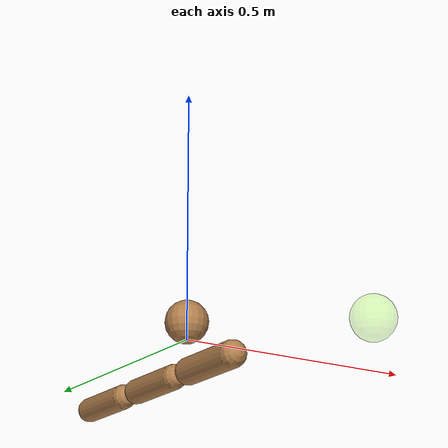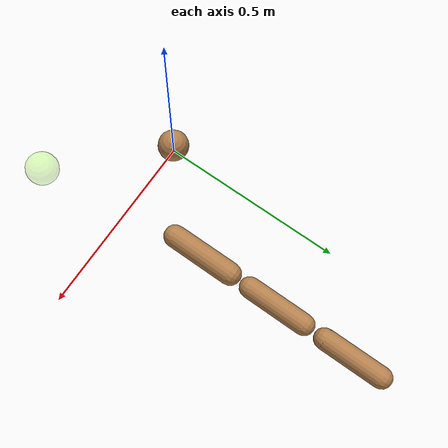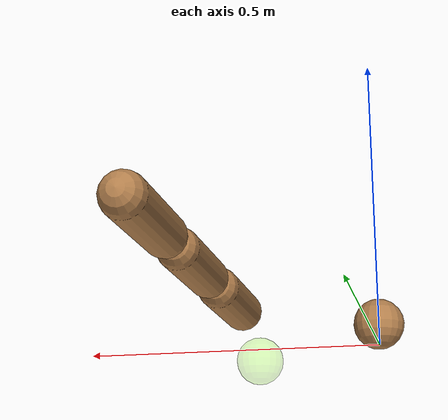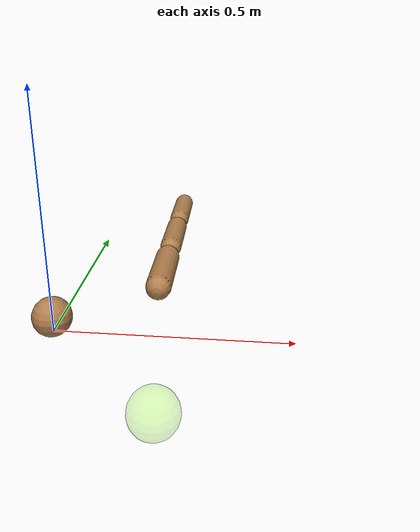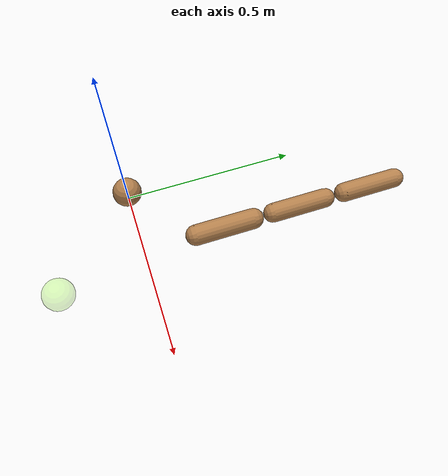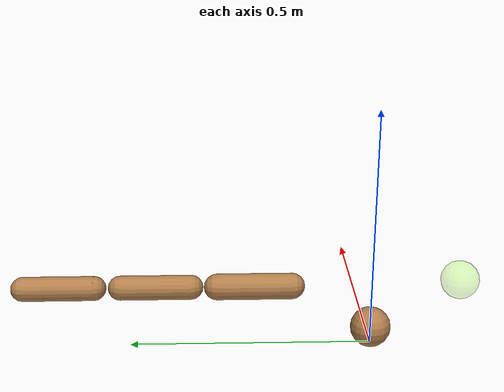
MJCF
<mujoco model="planar point mass">
    <visual>
        <quality shadowsize="2048" />
        <headlight ambient="0.4 0.4 0.4" diffuse="0.8 0.8 0.8" specular="0.1 0.1 0.1" />
    </visual>

  <!--  Time step is very important any number above 0.008 leads to unstable results original time step is 0.0001 -->
  <option impratio="10" iterations="1" ls_iterations="4" timestep="0.006">
    <flag eulerdamp="disable"/>
  </option>

    <asset>
        <texture type="skybox" name="skybox" builtin="gradient" mark="random" rgb1="0.4 0.6 0.8" rgb2="0 0 0" markrgb="1 1 1" width="800" height="4800" />
        <texture type="2d" name="grid" builtin="checker" mark="edge" rgb1="0.1 0.2 0.3" rgb2="0.2 0.3 0.4" markrgb="0.2 0.3 0.4" width="300" height="300" />
        <material name="grid" texture="grid" texuniform="true" reflectance="0.2" />
        <material name="self" rgba="0.7 0.5 0.3 1" />
        <material name="self_default" rgba="0.7 0.5 0.3 1" />
        <material name="self_highlight" rgba="0 0.5 0.3 1" />
        <material name="effector" rgba="0.7 0.4 0.2 1" />
        <material name="effector_default" rgba="0.7 0.4 0.2 1" />
        <material name="effector_highlight" rgba="0 0.5 0.3 1" />
        <material name="decoration" rgba="0.3 0.5 0.7 1" />
        <material name="eye" rgba="0 0.2 1 1" />
        <material name="target" rgba="0.6 0.3 0.3 1" />
        <material name="target_default" rgba="0.6 0.3 0.3 1" />
        <material name="target_highlight" rgba="0.6 0.3 0.3 0.4" />
    </asset>

    <option timestep="0.01"> </option>

    <worldbody>
        <camera name="fixed" pos="0 0 0.75" />
        <light name="light" pos="0 0 1" dir="0 0 -1" />

        <body name ="finger" pos="0.2 0.15 0.035" quat="0.707107 0.707107 0 0">
            <joint name="proximal" range="-150 -80" axis="0 -1 0" ref="-90" damping="0.05" limited="false" />
            <geom name="proximal" type="capsule" material="self" size=".03" fromto="0 0 0 0 0 -.17" contype="1" conaffinity="2"/>
            <body name="distal" pos="0 0 -.23">
                <joint name="distal" range="-50 50" axis="0 -1 0" damping="0.05" limited="false"/>
                <geom name="distal" type="capsule" size=".028" material="self" fromto="0 0 0 0 0 -.16" contype="1" conaffinity="2"/>
                <body name="distal2" pos="0 0 -.22">
                    <joint name="distal2" range="-50 50" axis="0 -1 0" damping="0.05" limited="false"/>
                    <geom name="distal2" type="capsule" size=".028" material="self" fromto="0 0 0 0 0 -.16" contype="1" conaffinity="2"/>
                </body>
            </body>
        </body>

        <body name="object" pos="0.0 0.0 0.035">
            <camera name="cam0" pos="0 -0.3 0.3" xyaxes="1 0 0 0 0.7 0.7"/>
            <joint name="root_x" type="slide"  pos="0 0 0" axis="1 0 0" damping="3" frictionloss=".01"/>
            <joint name="root_y" type="slide"  pos="0 0 0" axis="0 1 0" damping="3" frictionloss=".01"/>
            <geom name="pointmass" type="sphere" size=".042" material="self" mass=".6" condim="3"  group="2" solimp="0.9 0.95 0.001" solref="0.02 1"/>
        </body>

        <geom name="target" pos="0.25 -0.25 0.022" material="target" type="sphere" rgba="0.5 1 0 0.25"  size=".045" contype="0" conaffinity="0"/>
    </worldbody>

    <actuator>
        <general name="proximal" joint="proximal" gear="1 0 0 0 0 0" />
        <general name="distal" joint="distal" gear="0.45 0 0 0 0 0" />
        <general name="distal2" joint="distal2" gear="0.33 0 0 0 0 0" />
    </actuator>
</mujoco>
